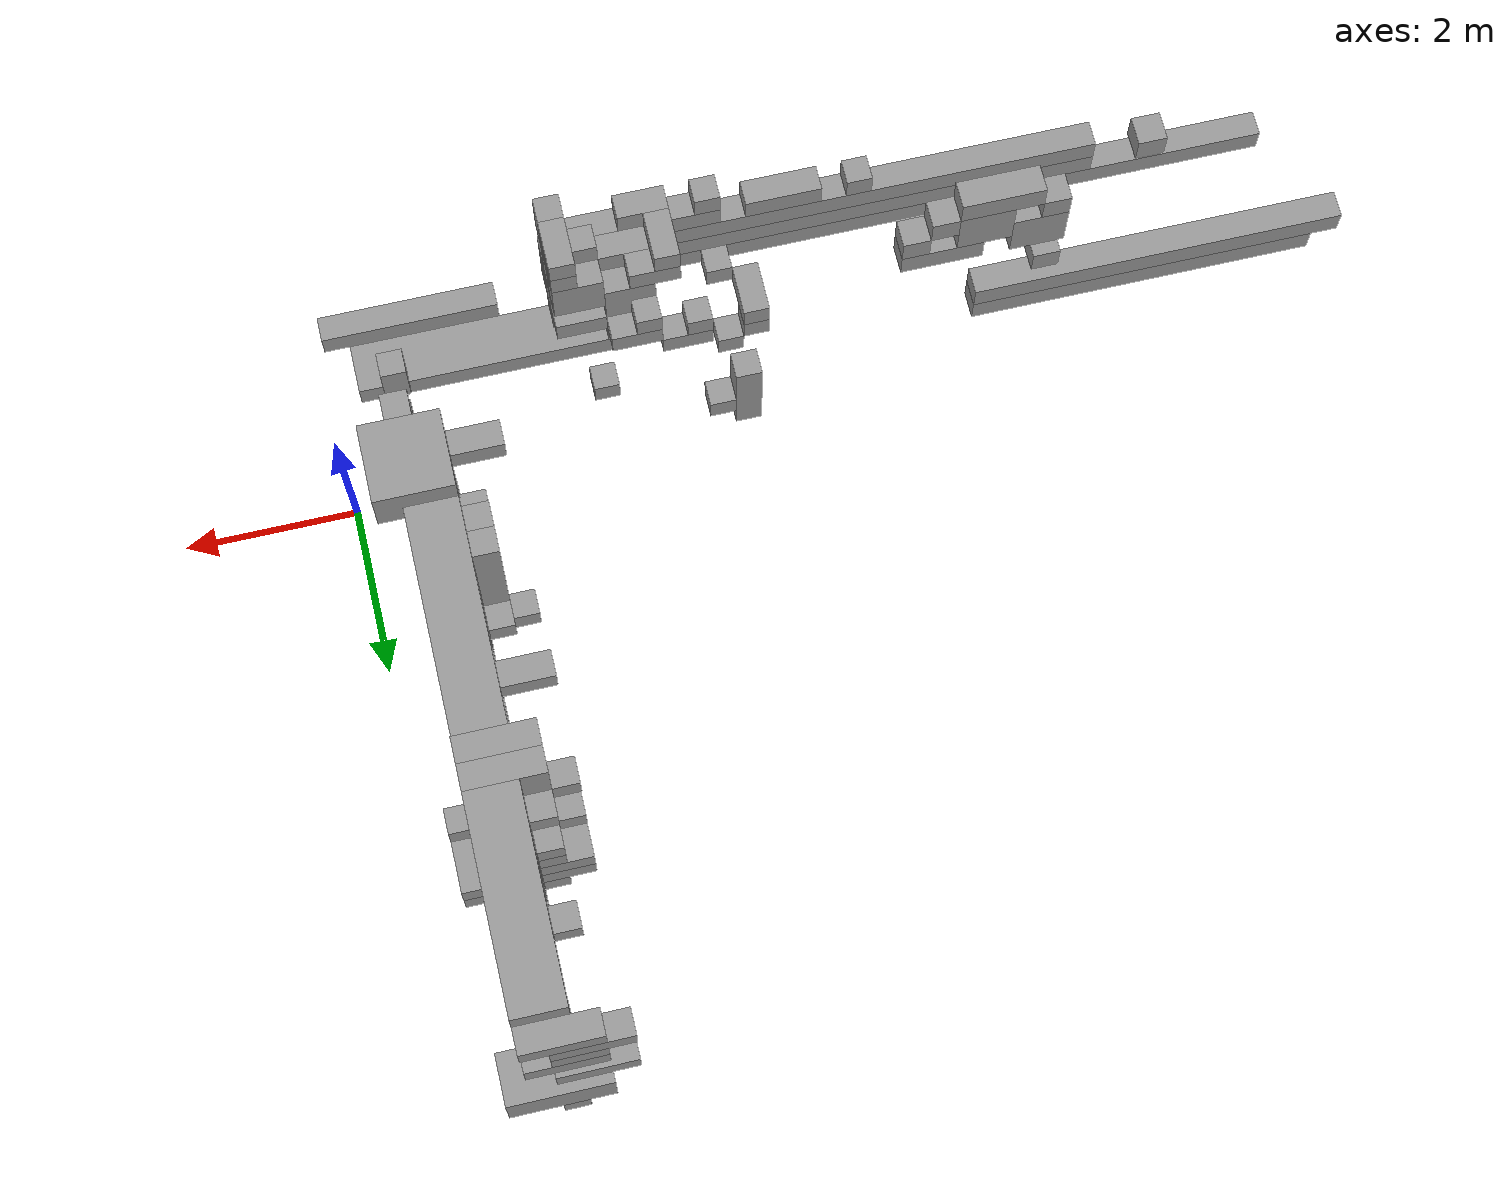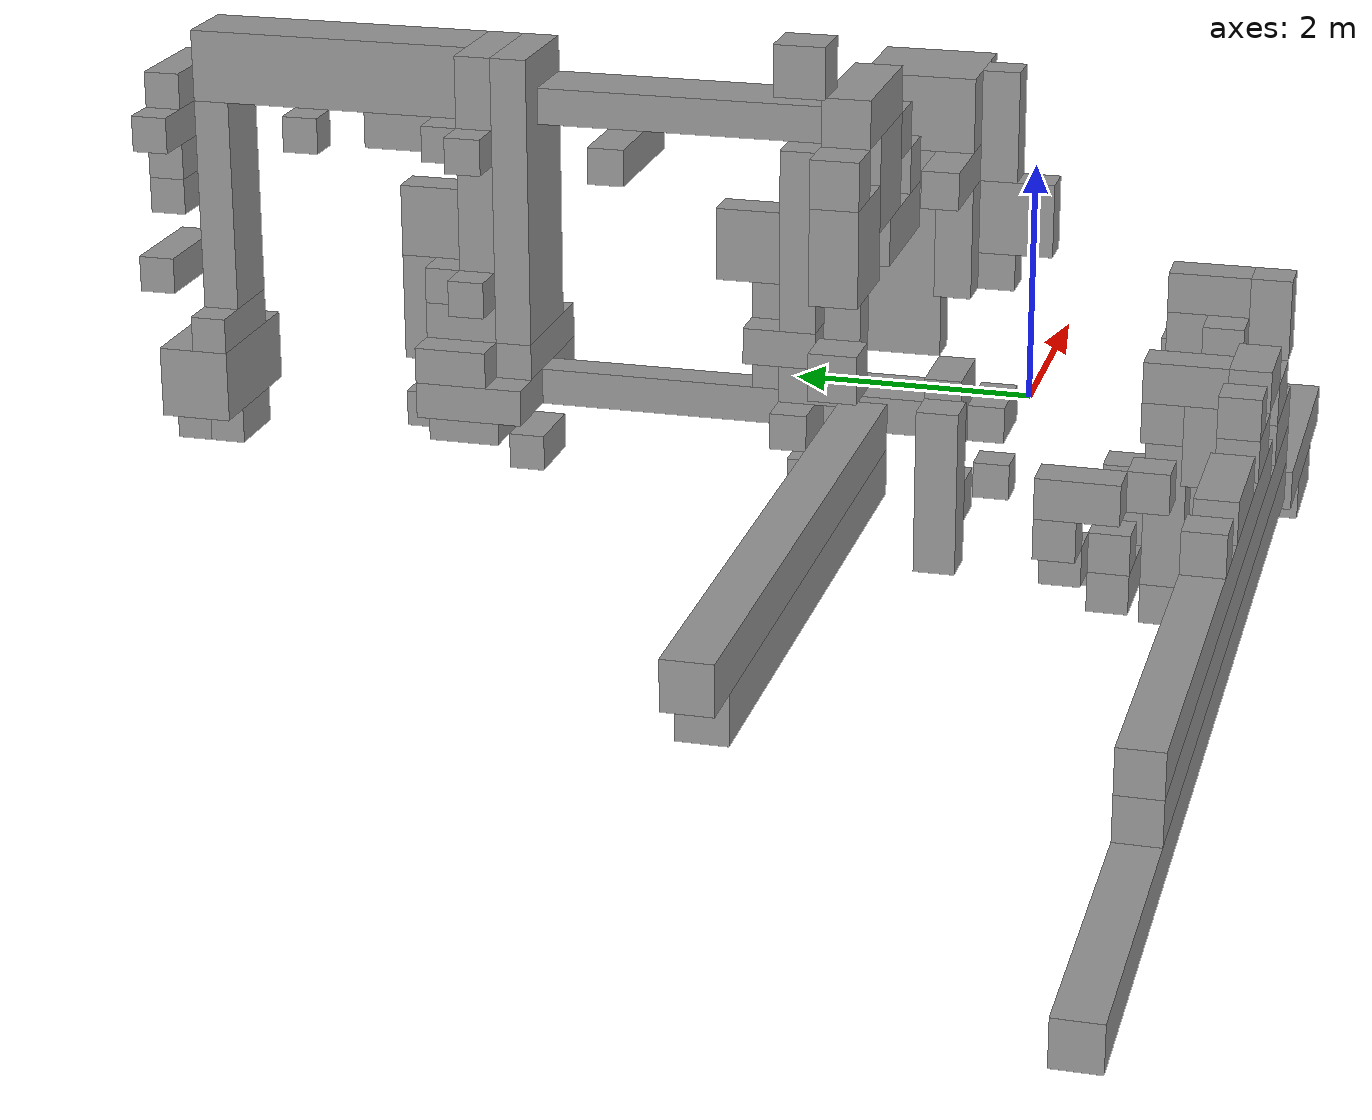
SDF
<sdf version="1.6">
 <world name="bt_world">
  <include><uri>model://sun</uri></include>
  <model name="obstacle_1648">
   <static>true</static>
   <pose>-7.05 -2.25 0.44999999999999996 0 0 0</pose>
   <link name="link">
    <collision name="collision"><geometry><box><size>8.7 0.3 0.3</size></box></geometry></collision>
    <visual name="visual">
     <geometry><box><size>8.7 0.3 0.3</size></box></geometry>
     <material><ambient>0.5 0.5 0.5 1</ambient><diffuse>0.6 0.6 0.6 1</diffuse></material>
    </visual>
   </link>
  </model>
  <model name="obstacle_1653">
   <static>true</static>
   <pose>-9.299999999999999 -0.15 2.25 0 0 0</pose>
   <link name="link">
    <collision name="collision"><geometry><box><size>4.2 0.3 0.3</size></box></geometry></collision>
    <visual name="visual">
     <geometry><box><size>4.2 0.3 0.3</size></box></geometry>
     <material><ambient>0.5 0.5 0.5 1</ambient><diffuse>0.6 0.6 0.6 1</diffuse></material>
    </visual>
   </link>
  </model>
  <model name="obstacle_1659">
   <static>true</static>
   <pose>-9.15 -0.15 1.95 0 0 0</pose>
   <link name="link">
    <collision name="collision"><geometry><box><size>3.9 0.3 0.3</size></box></geometry></collision>
    <visual name="visual">
     <geometry><box><size>3.9 0.3 0.3</size></box></geometry>
     <material><ambient>0.5 0.5 0.5 1</ambient><diffuse>0.6 0.6 0.6 1</diffuse></material>
    </visual>
   </link>
  </model>
  <model name="obstacle_1714">
   <static>true</static>
   <pose>-6.0 -2.25 0.75 0 0 0</pose>
   <link name="link">
    <collision name="collision"><geometry><box><size>6.6 0.3 0.3</size></box></geometry></collision>
    <visual name="visual">
     <geometry><box><size>6.6 0.3 0.3</size></box></geometry>
     <material><ambient>0.5 0.5 0.5 1</ambient><diffuse>0.6 0.6 0.6 1</diffuse></material>
    </visual>
   </link>
  </model>
  <model name="obstacle_1715">
   <static>true</static>
   <pose>-6.6 -2.25 1.05 0 0 0</pose>
   <link name="link">
    <collision name="collision">
     <geometry><box><size>5.3999999999999995 0.3 0.3</size></box></geometry>
    </collision>
    <visual name="visual">
     <geometry><box><size>5.3999999999999995 0.3 0.3</size></box></geometry>
     <material><ambient>0.5 0.5 0.5 1</ambient><diffuse>0.6 0.6 0.6 1</diffuse></material>
    </visual>
   </link>
  </model>
  <model name="obstacle_1720">
   <static>true</static>
   <pose>-8.85 -0.15 4.95 0 0 0</pose>
   <link name="link">
    <collision name="collision"><geometry><box><size>0.3 0.3 0.3</size></box></geometry></collision>
    <visual name="visual">
     <geometry><box><size>0.3 0.3 0.3</size></box></geometry>
     <material><ambient>0.5 0.5 0.5 1</ambient><diffuse>0.6 0.6 0.6 1</diffuse></material>
    </visual>
   </link>
  </model>
  <model name="obstacle_1740">
   <static>true</static>
   <pose>-7.949999999999999 -0.15 2.85 0 0 0</pose>
   <link name="link">
    <collision name="collision"><geometry><box><size>0.3 0.3 0.3</size></box></geometry></collision>
    <visual name="visual">
     <geometry><box><size>0.3 0.3 0.3</size></box></geometry>
     <material><ambient>0.5 0.5 0.5 1</ambient><diffuse>0.6 0.6 0.6 1</diffuse></material>
    </visual>
   </link>
  </model>
  <model name="obstacle_1741">
   <static>true</static>
   <pose>-7.8 -0.15 3.5999999999999996 0 0 0</pose>
   <link name="link">
    <collision name="collision"><geometry><box><size>0.6 0.3 0.6</size></box></geometry></collision>
    <visual name="visual">
     <geometry><box><size>0.6 0.3 0.6</size></box></geometry>
     <material><ambient>0.5 0.5 0.5 1</ambient><diffuse>0.6 0.6 0.6 1</diffuse></material>
    </visual>
   </link>
  </model>
  <model name="obstacle_1742">
   <static>true</static>
   <pose>-7.949999999999999 -0.15 4.05 0 0 0</pose>
   <link name="link">
    <collision name="collision"><geometry><box><size>0.3 0.3 0.3</size></box></geometry></collision>
    <visual name="visual">
     <geometry><box><size>0.3 0.3 0.3</size></box></geometry>
     <material><ambient>0.5 0.5 0.5 1</ambient><diffuse>0.6 0.6 0.6 1</diffuse></material>
    </visual>
   </link>
  </model>
  <model name="obstacle_1749">
   <static>true</static>
   <pose>-7.35 -0.15 4.35 0 0 0</pose>
   <link name="link">
    <collision name="collision">
     <geometry><box><size>0.8999999999999999 0.3 0.3</size></box></geometry>
    </collision>
    <visual name="visual">
     <geometry><box><size>0.8999999999999999 0.3 0.3</size></box></geometry>
     <material><ambient>0.5 0.5 0.5 1</ambient><diffuse>0.6 0.6 0.6 1</diffuse></material>
    </visual>
   </link>
  </model>
  <model name="obstacle_1758">
   <static>true</static>
   <pose>-7.199999999999999 -0.15 3.9 0 0 0</pose>
   <link name="link">
    <collision name="collision"><geometry><box><size>0.6 0.3 0.6</size></box></geometry></collision>
    <visual name="visual">
     <geometry><box><size>0.6 0.3 0.6</size></box></geometry>
     <material><ambient>0.5 0.5 0.5 1</ambient><diffuse>0.6 0.6 0.6 1</diffuse></material>
    </visual>
   </link>
  </model>
  <model name="obstacle_1764">
   <static>true</static>
   <pose>-6.75 -0.15 3.4499999999999997 0 0 0</pose>
   <link name="link">
    <collision name="collision">
     <geometry><box><size>0.8999999999999999 0.3 0.3</size></box></geometry>
    </collision>
    <visual name="visual">
     <geometry><box><size>0.8999999999999999 0.3 0.3</size></box></geometry>
     <material><ambient>0.5 0.5 0.5 1</ambient><diffuse>0.6 0.6 0.6 1</diffuse></material>
    </visual>
   </link>
  </model>
  <model name="obstacle_1768">
   <static>true</static>
   <pose>-6.75 -0.15 4.05 0 0 0</pose>
   <link name="link">
    <collision name="collision"><geometry><box><size>0.3 0.3 0.3</size></box></geometry></collision>
    <visual name="visual">
     <geometry><box><size>0.3 0.3 0.3</size></box></geometry>
     <material><ambient>0.5 0.5 0.5 1</ambient><diffuse>0.6 0.6 0.6 1</diffuse></material>
    </visual>
   </link>
  </model>
  <model name="obstacle_1771">
   <static>true</static>
   <pose>-6.45 -2.25 1.3499999999999999 0 0 0</pose>
   <link name="link">
    <collision name="collision"><geometry><box><size>0.3 0.3 0.3</size></box></geometry></collision>
    <visual name="visual">
     <geometry><box><size>0.3 0.3 0.3</size></box></geometry>
     <material><ambient>0.5 0.5 0.5 1</ambient><diffuse>0.6 0.6 0.6 1</diffuse></material>
    </visual>
   </link>
  </model>
  <model name="obstacle_1772">
   <static>true</static>
   <pose>-6.45 -0.15 3.75 0 0 0</pose>
   <link name="link">
    <collision name="collision"><geometry><box><size>0.3 0.3 0.3</size></box></geometry></collision>
    <visual name="visual">
     <geometry><box><size>0.3 0.3 0.3</size></box></geometry>
     <material><ambient>0.5 0.5 0.5 1</ambient><diffuse>0.6 0.6 0.6 1</diffuse></material>
    </visual>
   </link>
  </model>
  <model name="obstacle_1776">
   <static>true</static>
   <pose>-5.55 -2.25 1.3499999999999999 0 0 0</pose>
   <link name="link">
    <collision name="collision">
     <geometry><box><size>0.8999999999999999 0.3 0.3</size></box></geometry>
    </collision>
    <visual name="visual">
     <geometry><box><size>0.8999999999999999 0.3 0.3</size></box></geometry>
     <material><ambient>0.5 0.5 0.5 1</ambient><diffuse>0.6 0.6 0.6 1</diffuse></material>
    </visual>
   </link>
  </model>
  <model name="obstacle_1782">
   <static>true</static>
   <pose>-4.95 -1.2 1.05 0 0 0</pose>
   <link name="link">
    <collision name="collision"><geometry><box><size>0.3 0.6 0.3</size></box></geometry></collision>
    <visual name="visual">
     <geometry><box><size>0.3 0.6 0.3</size></box></geometry>
     <material><ambient>0.5 0.5 0.5 1</ambient><diffuse>0.6 0.6 0.6 1</diffuse></material>
    </visual>
   </link>
  </model>
  <model name="obstacle_1783">
   <static>true</static>
   <pose>-4.95 -1.05 0.75 0 0 0</pose>
   <link name="link">
    <collision name="collision"><geometry><box><size>0.3 0.3 0.3</size></box></geometry></collision>
    <visual name="visual">
     <geometry><box><size>0.3 0.3 0.3</size></box></geometry>
     <material><ambient>0.5 0.5 0.5 1</ambient><diffuse>0.6 0.6 0.6 1</diffuse></material>
    </visual>
   </link>
  </model>
  <model name="obstacle_1789">
   <static>true</static>
   <pose>-4.5 -2.25 1.3499999999999999 0 0 0</pose>
   <link name="link">
    <collision name="collision"><geometry><box><size>0.6 0.3 0.3</size></box></geometry></collision>
    <visual name="visual">
     <geometry><box><size>0.6 0.3 0.3</size></box></geometry>
     <material><ambient>0.5 0.5 0.5 1</ambient><diffuse>0.6 0.6 0.6 1</diffuse></material>
    </visual>
   </link>
  </model>
  <model name="obstacle_1790">
   <static>true</static>
   <pose>-4.6499999999999995 -2.25 1.65 0 0 0</pose>
   <link name="link">
    <collision name="collision"><geometry><box><size>0.3 0.3 0.3</size></box></geometry></collision>
    <visual name="visual">
     <geometry><box><size>0.3 0.3 0.3</size></box></geometry>
     <material><ambient>0.5 0.5 0.5 1</ambient><diffuse>0.6 0.6 0.6 1</diffuse></material>
    </visual>
   </link>
  </model>
  <model name="obstacle_1791">
   <static>true</static>
   <pose>-4.6499999999999995 -1.65 1.05 0 0 0</pose>
   <link name="link">
    <collision name="collision"><geometry><box><size>0.3 0.3 0.3</size></box></geometry></collision>
    <visual name="visual">
     <geometry><box><size>0.3 0.3 0.3</size></box></geometry>
     <material><ambient>0.5 0.5 0.5 1</ambient><diffuse>0.6 0.6 0.6 1</diffuse></material>
    </visual>
   </link>
  </model>
  <model name="obstacle_1792">
   <static>true</static>
   <pose>-4.6499999999999995 -1.05 0.44999999999999996 0 0 0</pose>
   <link name="link">
    <collision name="collision"><geometry><box><size>0.3 0.3 0.3</size></box></geometry></collision>
    <visual name="visual">
     <geometry><box><size>0.3 0.3 0.3</size></box></geometry>
     <material><ambient>0.5 0.5 0.5 1</ambient><diffuse>0.6 0.6 0.6 1</diffuse></material>
    </visual>
   </link>
  </model>
  <model name="obstacle_1793">
   <static>true</static>
   <pose>-4.6499999999999995 -0.15 0.8999999999999999 0 0 0</pose>
   <link name="link">
    <collision name="collision"><geometry><box><size>0.3 0.3 1.2</size></box></geometry></collision>
    <visual name="visual">
     <geometry><box><size>0.3 0.3 1.2</size></box></geometry>
     <material><ambient>0.5 0.5 0.5 1</ambient><diffuse>0.6 0.6 0.6 1</diffuse></material>
    </visual>
   </link>
  </model>
  <model name="obstacle_1802">
   <static>true</static>
   <pose>-4.2 -1.3499999999999999 0.15 0 0 0</pose>
   <link name="link">
    <collision name="collision"><geometry><box><size>0.6 0.3 0.3</size></box></geometry></collision>
    <visual name="visual">
     <geometry><box><size>0.6 0.3 0.3</size></box></geometry>
     <material><ambient>0.5 0.5 0.5 1</ambient><diffuse>0.6 0.6 0.6 1</diffuse></material>
    </visual>
   </link>
  </model>
  <model name="obstacle_1803">
   <static>true</static>
   <pose>-4.35 -1.3499999999999999 0.44999999999999996 0 0 0</pose>
   <link name="link">
    <collision name="collision"><geometry><box><size>0.3 0.3 0.3</size></box></geometry></collision>
    <visual name="visual">
     <geometry><box><size>0.3 0.3 0.3</size></box></geometry>
     <material><ambient>0.5 0.5 0.5 1</ambient><diffuse>0.6 0.6 0.6 1</diffuse></material>
    </visual>
   </link>
  </model>
  <model name="obstacle_1804">
   <static>true</static>
   <pose>-4.35 -0.15 0.75 0 0 0</pose>
   <link name="link">
    <collision name="collision"><geometry><box><size>0.3 0.3 0.3</size></box></geometry></collision>
    <visual name="visual">
     <geometry><box><size>0.3 0.3 0.3</size></box></geometry>
     <material><ambient>0.5 0.5 0.5 1</ambient><diffuse>0.6 0.6 0.6 1</diffuse></material>
    </visual>
   </link>
  </model>
  <model name="obstacle_1818">
   <static>true</static>
   <pose>-3.9 -2.25 1.65 0 0 0</pose>
   <link name="link">
    <collision name="collision"><geometry><box><size>0.6 0.3 0.3</size></box></geometry></collision>
    <visual name="visual">
     <geometry><box><size>0.6 0.3 0.3</size></box></geometry>
     <material><ambient>0.5 0.5 0.5 1</ambient><diffuse>0.6 0.6 0.6 1</diffuse></material>
    </visual>
   </link>
  </model>
  <model name="obstacle_1819">
   <static>true</static>
   <pose>-3.4499999999999997 -1.95 1.2 0 0 0</pose>
   <link name="link">
    <collision name="collision"><geometry><box><size>1.5 0.3 0.6</size></box></geometry></collision>
    <visual name="visual">
     <geometry><box><size>1.5 0.3 0.6</size></box></geometry>
     <material><ambient>0.5 0.5 0.5 1</ambient><diffuse>0.6 0.6 0.6 1</diffuse></material>
    </visual>
   </link>
  </model>
  <model name="obstacle_1820">
   <static>true</static>
   <pose>-4.05 -1.7999999999999998 1.65 0 0 0</pose>
   <link name="link">
    <collision name="collision"><geometry><box><size>0.3 0.6 0.3</size></box></geometry></collision>
    <visual name="visual">
     <geometry><box><size>0.3 0.6 0.3</size></box></geometry>
     <material><ambient>0.5 0.5 0.5 1</ambient><diffuse>0.6 0.6 0.6 1</diffuse></material>
    </visual>
   </link>
  </model>
  <model name="obstacle_1821">
   <static>true</static>
   <pose>-3.9 -1.65 1.3499999999999999 0 0 0</pose>
   <link name="link">
    <collision name="collision"><geometry><box><size>0.6 0.3 0.3</size></box></geometry></collision>
    <visual name="visual">
     <geometry><box><size>0.6 0.3 0.3</size></box></geometry>
     <material><ambient>0.5 0.5 0.5 1</ambient><diffuse>0.6 0.6 0.6 1</diffuse></material>
    </visual>
   </link>
  </model>
  <model name="obstacle_1828">
   <static>true</static>
   <pose>-2.1 -1.7999999999999998 -0.15 0 0 0</pose>
   <link name="link">
    <collision name="collision">
     <geometry><box><size>3.5999999999999996 0.6 0.3</size></box></geometry>
    </collision>
    <visual name="visual">
     <geometry><box><size>3.5999999999999996 0.6 0.3</size></box></geometry>
     <material><ambient>0.5 0.5 0.5 1</ambient><diffuse>0.6 0.6 0.6 1</diffuse></material>
    </visual>
   </link>
  </model>
  <model name="obstacle_1829">
   <static>true</static>
   <pose>-3.3 -1.95 0.15 0 0 0</pose>
   <link name="link">
    <collision name="collision"><geometry><box><size>1.2 0.3 0.3</size></box></geometry></collision>
    <visual name="visual">
     <geometry><box><size>1.2 0.3 0.3</size></box></geometry>
     <material><ambient>0.5 0.5 0.5 1</ambient><diffuse>0.6 0.6 0.6 1</diffuse></material>
    </visual>
   </link>
  </model>
  <model name="obstacle_1830">
   <static>true</static>
   <pose>-3.5999999999999996 -1.65 0.6 0 0 0</pose>
   <link name="link">
    <collision name="collision"><geometry><box><size>0.6 0.3 1.2</size></box></geometry></collision>
    <visual name="visual">
     <geometry><box><size>0.6 0.3 1.2</size></box></geometry>
     <material><ambient>0.5 0.5 0.5 1</ambient><diffuse>0.6 0.6 0.6 1</diffuse></material>
    </visual>
   </link>
  </model>
  <model name="obstacle_1831">
   <static>true</static>
   <pose>-3.5999999999999996 -1.3499999999999999 0.44999999999999996 0 0 0</pose>
   <link name="link">
    <collision name="collision"><geometry><box><size>0.6 0.3 0.3</size></box></geometry></collision>
    <visual name="visual">
     <geometry><box><size>0.6 0.3 0.3</size></box></geometry>
     <material><ambient>0.5 0.5 0.5 1</ambient><diffuse>0.6 0.6 0.6 1</diffuse></material>
    </visual>
   </link>
  </model>
  <model name="obstacle_1832">
   <static>true</static>
   <pose>-3.75 -1.3499999999999999 0.75 0 0 0</pose>
   <link name="link">
    <collision name="collision"><geometry><box><size>0.3 0.3 0.3</size></box></geometry></collision>
    <visual name="visual">
     <geometry><box><size>0.3 0.3 0.3</size></box></geometry>
     <material><ambient>0.5 0.5 0.5 1</ambient><diffuse>0.6 0.6 0.6 1</diffuse></material>
    </visual>
   </link>
  </model>
  <model name="obstacle_1842">
   <static>true</static>
   <pose>-3.15 -2.25 1.05 0 0 0</pose>
   <link name="link">
    <collision name="collision">
     <geometry><box><size>0.8999999999999999 0.3 0.3</size></box></geometry>
    </collision>
    <visual name="visual">
     <geometry><box><size>0.8999999999999999 0.3 0.3</size></box></geometry>
     <material><ambient>0.5 0.5 0.5 1</ambient><diffuse>0.6 0.6 0.6 1</diffuse></material>
    </visual>
   </link>
  </model>
  <model name="obstacle_1843">
   <static>true</static>
   <pose>-3.3 -2.25 1.3499999999999999 0 0 0</pose>
   <link name="link">
    <collision name="collision"><geometry><box><size>0.6 0.3 0.3</size></box></geometry></collision>
    <visual name="visual">
     <geometry><box><size>0.6 0.3 0.3</size></box></geometry>
     <material><ambient>0.5 0.5 0.5 1</ambient><diffuse>0.6 0.6 0.6 1</diffuse></material>
    </visual>
   </link>
  </model>
  <model name="obstacle_1844">
   <static>true</static>
   <pose>-3.15 -1.95 0.6 0 0 0</pose>
   <link name="link">
    <collision name="collision">
     <geometry><box><size>0.8999999999999999 0.3 0.6</size></box></geometry>
    </collision>
    <visual name="visual">
     <geometry><box><size>0.8999999999999999 0.3 0.6</size></box></geometry>
     <material><ambient>0.5 0.5 0.5 1</ambient><diffuse>0.6 0.6 0.6 1</diffuse></material>
    </visual>
   </link>
  </model>
  <model name="obstacle_1849">
   <static>true</static>
   <pose>-3.0 -1.95 1.65 0 0 0</pose>
   <link name="link">
    <collision name="collision"><geometry><box><size>0.6 0.3 0.3</size></box></geometry></collision>
    <visual name="visual">
     <geometry><box><size>0.6 0.3 0.3</size></box></geometry>
     <material><ambient>0.5 0.5 0.5 1</ambient><diffuse>0.6 0.6 0.6 1</diffuse></material>
    </visual>
   </link>
  </model>
  <model name="obstacle_1850">
   <static>true</static>
   <pose>-3.0 -1.65 0.44999999999999996 0 0 0</pose>
   <link name="link">
    <collision name="collision"><geometry><box><size>0.6 0.3 0.3</size></box></geometry></collision>
    <visual name="visual">
     <geometry><box><size>0.6 0.3 0.3</size></box></geometry>
     <material><ambient>0.5 0.5 0.5 1</ambient><diffuse>0.6 0.6 0.6 1</diffuse></material>
    </visual>
   </link>
  </model>
  <model name="obstacle_1851">
   <static>true</static>
   <pose>-3.0 -1.65 1.2 0 0 0</pose>
   <link name="link">
    <collision name="collision"><geometry><box><size>0.6 0.3 0.6</size></box></geometry></collision>
    <visual name="visual">
     <geometry><box><size>0.6 0.3 0.6</size></box></geometry>
     <material><ambient>0.5 0.5 0.5 1</ambient><diffuse>0.6 0.6 0.6 1</diffuse></material>
    </visual>
   </link>
  </model>
  <model name="obstacle_1852">
   <static>true</static>
   <pose>-3.15 -1.05 -0.15 0 0 0</pose>
   <link name="link">
    <collision name="collision"><geometry><box><size>0.3 0.3 0.3</size></box></geometry></collision>
    <visual name="visual">
     <geometry><box><size>0.3 0.3 0.3</size></box></geometry>
     <material><ambient>0.5 0.5 0.5 1</ambient><diffuse>0.6 0.6 0.6 1</diffuse></material>
    </visual>
   </link>
  </model>
  <model name="obstacle_1858">
   <static>true</static>
   <pose>-2.85 -2.25 1.7999999999999998 0 0 0</pose>
   <link name="link">
    <collision name="collision"><geometry><box><size>0.3 0.3 0.6</size></box></geometry></collision>
    <visual name="visual">
     <geometry><box><size>0.3 0.3 0.6</size></box></geometry>
     <material><ambient>0.5 0.5 0.5 1</ambient><diffuse>0.6 0.6 0.6 1</diffuse></material>
    </visual>
   </link>
  </model>
  <model name="obstacle_1859">
   <static>true</static>
   <pose>-2.85 -1.7999999999999998 1.95 0 0 0</pose>
   <link name="link">
    <collision name="collision"><geometry><box><size>0.3 0.6 0.3</size></box></geometry></collision>
    <visual name="visual">
     <geometry><box><size>0.3 0.6 0.3</size></box></geometry>
     <material><ambient>0.5 0.5 0.5 1</ambient><diffuse>0.6 0.6 0.6 1</diffuse></material>
    </visual>
   </link>
  </model>
  <model name="obstacle_1860">
   <static>true</static>
   <pose>-2.85 -1.65 1.65 0 0 0</pose>
   <link name="link">
    <collision name="collision"><geometry><box><size>0.3 0.3 0.3</size></box></geometry></collision>
    <visual name="visual">
     <geometry><box><size>0.3 0.3 0.3</size></box></geometry>
     <material><ambient>0.5 0.5 0.5 1</ambient><diffuse>0.6 0.6 0.6 1</diffuse></material>
    </visual>
   </link>
  </model>
  <model name="obstacle_1892">
   <static>true</static>
   <pose>-1.05 -2.25 0.15 0 0 0</pose>
   <link name="link">
    <collision name="collision"><geometry><box><size>2.1 0.3 0.3</size></box></geometry></collision>
    <visual name="visual">
     <geometry><box><size>2.1 0.3 0.3</size></box></geometry>
     <material><ambient>0.5 0.5 0.5 1</ambient><diffuse>0.6 0.6 0.6 1</diffuse></material>
    </visual>
   </link>
  </model>
  <model name="obstacle_1896">
   <static>true</static>
   <pose>-1.2 0.44999999999999996 2.25 0 0 0</pose>
   <link name="link">
    <collision name="collision"><geometry><box><size>1.2 0.3 0.3</size></box></geometry></collision>
    <visual name="visual">
     <geometry><box><size>1.2 0.3 0.3</size></box></geometry>
     <material><ambient>0.5 0.5 0.5 1</ambient><diffuse>0.6 0.6 0.6 1</diffuse></material>
    </visual>
   </link>
  </model>
  <model name="obstacle_1897">
   <static>true</static>
   <pose>-1.3499999999999999 1.65 0.15 0 0 0</pose>
   <link name="link">
    <collision name="collision">
     <geometry><box><size>0.8999999999999999 0.3 0.3</size></box></geometry>
    </collision>
    <visual name="visual">
     <geometry><box><size>0.8999999999999999 0.3 0.3</size></box></geometry>
     <material><ambient>0.5 0.5 0.5 1</ambient><diffuse>0.6 0.6 0.6 1</diffuse></material>
    </visual>
   </link>
  </model>
  <model name="obstacle_1898">
   <static>true</static>
   <pose>-1.2 3.15 2.25 0 0 0</pose>
   <link name="link">
    <collision name="collision"><geometry><box><size>1.2 0.3 0.3</size></box></geometry></collision>
    <visual name="visual">
     <geometry><box><size>1.2 0.3 0.3</size></box></geometry>
     <material><ambient>0.5 0.5 0.5 1</ambient><diffuse>0.6 0.6 0.6 1</diffuse></material>
    </visual>
   </link>
  </model>
  <model name="obstacle_1899">
   <static>true</static>
   <pose>-1.05 4.35 0.15 0 0 0</pose>
   <link name="link">
    <collision name="collision">
     <geometry><box><size>1.5 0.8999999999999999 0.3</size></box></geometry>
    </collision>
    <visual name="visual">
     <geometry><box><size>1.5 0.8999999999999999 0.3</size></box></geometry>
     <material><ambient>0.5 0.5 0.5 1</ambient><diffuse>0.6 0.6 0.6 1</diffuse></material>
    </visual>
   </link>
  </model>
  <model name="obstacle_1900">
   <static>true</static>
   <pose>-1.3499999999999999 4.5 0.44999999999999996 0 0 0</pose>
   <link name="link">
    <collision name="collision">
     <geometry><box><size>0.8999999999999999 0.6 0.3</size></box></geometry>
    </collision>
    <visual name="visual">
     <geometry><box><size>0.8999999999999999 0.6 0.3</size></box></geometry>
     <material><ambient>0.5 0.5 0.5 1</ambient><diffuse>0.6 0.6 0.6 1</diffuse></material>
    </visual>
   </link>
  </model>
  <model name="obstacle_1901">
   <static>true</static>
   <pose>-1.3499999999999999 4.35 1.05 0 0 0</pose>
   <link name="link">
    <collision name="collision">
     <geometry><box><size>0.8999999999999999 0.3 0.3</size></box></geometry>
    </collision>
    <visual name="visual">
     <geometry><box><size>0.8999999999999999 0.3 0.3</size></box></geometry>
     <material><ambient>0.5 0.5 0.5 1</ambient><diffuse>0.6 0.6 0.6 1</diffuse></material>
    </visual>
   </link>
  </model>
  <model name="obstacle_1902">
   <static>true</static>
   <pose>-1.3499999999999999 4.35 2.25 0 0 0</pose>
   <link name="link">
    <collision name="collision">
     <geometry><box><size>0.8999999999999999 0.3 0.3</size></box></geometry>
    </collision>
    <visual name="visual">
     <geometry><box><size>0.8999999999999999 0.3 0.3</size></box></geometry>
     <material><ambient>0.5 0.5 0.5 1</ambient><diffuse>0.6 0.6 0.6 1</diffuse></material>
    </visual>
   </link>
  </model>
  <model name="obstacle_1904">
   <static>true</static>
   <pose>-1.3499999999999999 7.05 1.05 0 0 0</pose>
   <link name="link">
    <collision name="collision">
     <geometry><box><size>0.8999999999999999 0.3 0.3</size></box></geometry>
    </collision>
    <visual name="visual">
     <geometry><box><size>0.8999999999999999 0.3 0.3</size></box></geometry>
     <material><ambient>0.5 0.5 0.5 1</ambient><diffuse>0.6 0.6 0.6 1</diffuse></material>
    </visual>
   </link>
  </model>
  <model name="obstacle_1905">
   <static>true</static>
   <pose>-1.3499999999999999 7.05 2.25 0 0 0</pose>
   <link name="link">
    <collision name="collision">
     <geometry><box><size>0.8999999999999999 0.3 0.3</size></box></geometry>
    </collision>
    <visual name="visual">
     <geometry><box><size>0.8999999999999999 0.3 0.3</size></box></geometry>
     <material><ambient>0.5 0.5 0.5 1</ambient><diffuse>0.6 0.6 0.6 1</diffuse></material>
    </visual>
   </link>
  </model>
  <model name="obstacle_1919">
   <static>true</static>
   <pose>-1.05 -2.25 -0.15 0 0 0</pose>
   <link name="link">
    <collision name="collision">
     <geometry><box><size>0.8999999999999999 0.3 0.3</size></box></geometry>
    </collision>
    <visual name="visual">
     <geometry><box><size>0.8999999999999999 0.3 0.3</size></box></geometry>
     <material><ambient>0.5 0.5 0.5 1</ambient><diffuse>0.6 0.6 0.6 1</diffuse></material>
    </visual>
   </link>
  </model>
  <model name="obstacle_1920">
   <static>true</static>
   <pose>-1.2 0.44999999999999996 0.3 0 0 0</pose>
   <link name="link">
    <collision name="collision"><geometry><box><size>0.6 0.3 0.6</size></box></geometry></collision>
    <visual name="visual">
     <geometry><box><size>0.6 0.3 0.6</size></box></geometry>
     <material><ambient>0.5 0.5 0.5 1</ambient><diffuse>0.6 0.6 0.6 1</diffuse></material>
    </visual>
   </link>
  </model>
  <model name="obstacle_1922">
   <static>true</static>
   <pose>-1.3499999999999999 1.5 0.44999999999999996 0 0 0</pose>
   <link name="link">
    <collision name="collision"><geometry><box><size>0.3 0.6 0.3</size></box></geometry></collision>
    <visual name="visual">
     <geometry><box><size>0.3 0.6 0.3</size></box></geometry>
     <material><ambient>0.5 0.5 0.5 1</ambient><diffuse>0.6 0.6 0.6 1</diffuse></material>
    </visual>
   </link>
  </model>
  <model name="obstacle_1923">
   <static>true</static>
   <pose>-1.05 1.3499999999999999 2.25 0 0 0</pose>
   <link name="link">
    <collision name="collision">
     <geometry><box><size>0.8999999999999999 0.3 0.3</size></box></geometry>
    </collision>
    <visual name="visual">
     <geometry><box><size>0.8999999999999999 0.3 0.3</size></box></geometry>
     <material><ambient>0.5 0.5 0.5 1</ambient><diffuse>0.6 0.6 0.6 1</diffuse></material>
    </visual>
   </link>
  </model>
  <model name="obstacle_1925">
   <static>true</static>
   <pose>-1.3499999999999999 1.7999999999999998 0.75 0 0 0</pose>
   <link name="link">
    <collision name="collision"><geometry><box><size>0.3 0.6 0.3</size></box></geometry></collision>
    <visual name="visual">
     <geometry><box><size>0.3 0.6 0.3</size></box></geometry>
     <material><ambient>0.5 0.5 0.5 1</ambient><diffuse>0.6 0.6 0.6 1</diffuse></material>
    </visual>
   </link>
  </model>
  <model name="obstacle_1926">
   <static>true</static>
   <pose>-1.3499999999999999 1.65 1.65 0 0 0</pose>
   <link name="link">
    <collision name="collision"><geometry><box><size>0.3 0.3 1.5</size></box></geometry></collision>
    <visual name="visual">
     <geometry><box><size>0.3 0.3 1.5</size></box></geometry>
     <material><ambient>0.5 0.5 0.5 1</ambient><diffuse>0.6 0.6 0.6 1</diffuse></material>
    </visual>
   </link>
  </model>
  <model name="obstacle_1928">
   <static>true</static>
   <pose>-0.8999999999999999 4.05 0.44999999999999996 0 0 0</pose>
   <link name="link">
    <collision name="collision"><geometry><box><size>1.2 0.3 0.3</size></box></geometry></collision>
    <visual name="visual">
     <geometry><box><size>1.2 0.3 0.3</size></box></geometry>
     <material><ambient>0.5 0.5 0.5 1</ambient><diffuse>0.6 0.6 0.6 1</diffuse></material>
    </visual>
   </link>
  </model>
  <model name="obstacle_1929">
   <static>true</static>
   <pose>-1.05 4.05 1.7999999999999998 0 0 0</pose>
   <link name="link">
    <collision name="collision">
     <geometry><box><size>0.8999999999999999 0.3 2.4</size></box></geometry>
    </collision>
    <visual name="visual">
     <geometry><box><size>0.8999999999999999 0.3 2.4</size></box></geometry>
     <material><ambient>0.5 0.5 0.5 1</ambient><diffuse>0.6 0.6 0.6 1</diffuse></material>
    </visual>
   </link>
  </model>
  <model name="obstacle_1930">
   <static>true</static>
   <pose>-0.8999999999999999 4.5 -0.15 0 0 0</pose>
   <link name="link">
    <collision name="collision"><geometry><box><size>1.2 0.6 0.3</size></box></geometry></collision>
    <visual name="visual">
     <geometry><box><size>1.2 0.6 0.3</size></box></geometry>
     <material><ambient>0.5 0.5 0.5 1</ambient><diffuse>0.6 0.6 0.6 1</diffuse></material>
    </visual>
   </link>
  </model>
  <model name="obstacle_1931">
   <static>true</static>
   <pose>-1.2 4.5 0.75 0 0 0</pose>
   <link name="link">
    <collision name="collision"><geometry><box><size>0.6 0.6 0.3</size></box></geometry></collision>
    <visual name="visual">
     <geometry><box><size>0.6 0.6 0.3</size></box></geometry>
     <material><ambient>0.5 0.5 0.5 1</ambient><diffuse>0.6 0.6 0.6 1</diffuse></material>
    </visual>
   </link>
  </model>
  <model name="obstacle_1932">
   <static>true</static>
   <pose>-1.2 4.35 1.65 0 0 0</pose>
   <link name="link">
    <collision name="collision">
     <geometry><box><size>0.6 0.3 0.8999999999999999</size></box></geometry>
    </collision>
    <visual name="visual">
     <geometry><box><size>0.6 0.3 0.8999999999999999</size></box></geometry>
     <material><ambient>0.5 0.5 0.5 1</ambient><diffuse>0.6 0.6 0.6 1</diffuse></material>
    </visual>
   </link>
  </model>
  <model name="obstacle_1933">
   <static>true</static>
   <pose>-1.05 4.35 2.6999999999999997 0 0 0</pose>
   <link name="link">
    <collision name="collision">
     <geometry><box><size>0.8999999999999999 0.3 0.6</size></box></geometry>
    </collision>
    <visual name="visual">
     <geometry><box><size>0.8999999999999999 0.3 0.6</size></box></geometry>
     <material><ambient>0.5 0.5 0.5 1</ambient><diffuse>0.6 0.6 0.6 1</diffuse></material>
    </visual>
   </link>
  </model>
  <model name="obstacle_1934">
   <static>true</static>
   <pose>-1.2 4.6499999999999995 1.05 0 0 0</pose>
   <link name="link">
    <collision name="collision"><geometry><box><size>0.6 0.3 0.3</size></box></geometry></collision>
    <visual name="visual">
     <geometry><box><size>0.6 0.3 0.3</size></box></geometry>
     <material><ambient>0.5 0.5 0.5 1</ambient><diffuse>0.6 0.6 0.6 1</diffuse></material>
    </visual>
   </link>
  </model>
  <model name="obstacle_1935">
   <static>true</static>
   <pose>-1.2 4.6499999999999995 2.25 0 0 0</pose>
   <link name="link">
    <collision name="collision"><geometry><box><size>0.6 0.3 0.3</size></box></geometry></collision>
    <visual name="visual">
     <geometry><box><size>0.6 0.3 0.3</size></box></geometry>
     <material><ambient>0.5 0.5 0.5 1</ambient><diffuse>0.6 0.6 0.6 1</diffuse></material>
    </visual>
   </link>
  </model>
  <model name="obstacle_1937">
   <static>true</static>
   <pose>-1.3499999999999999 5.85 2.25 0 0 0</pose>
   <link name="link">
    <collision name="collision"><geometry><box><size>0.3 0.3 0.3</size></box></geometry></collision>
    <visual name="visual">
     <geometry><box><size>0.3 0.3 0.3</size></box></geometry>
     <material><ambient>0.5 0.5 0.5 1</ambient><diffuse>0.6 0.6 0.6 1</diffuse></material>
    </visual>
   </link>
  </model>
  <model name="obstacle_1938">
   <static>true</static>
   <pose>-0.8999999999999999 6.8999999999999995 0.0 0 0 0</pose>
   <link name="link">
    <collision name="collision"><geometry><box><size>1.2 0.6 0.6</size></box></geometry></collision>
    <visual name="visual">
     <geometry><box><size>1.2 0.6 0.6</size></box></geometry>
     <material><ambient>0.5 0.5 0.5 1</ambient><diffuse>0.6 0.6 0.6 1</diffuse></material>
    </visual>
   </link>
  </model>
  <model name="obstacle_1939">
   <static>true</static>
   <pose>-1.05 6.75 0.44999999999999996 0 0 0</pose>
   <link name="link">
    <collision name="collision">
     <geometry><box><size>0.8999999999999999 0.3 0.3</size></box></geometry>
    </collision>
    <visual name="visual">
     <geometry><box><size>0.8999999999999999 0.3 0.3</size></box></geometry>
     <material><ambient>0.5 0.5 0.5 1</ambient><diffuse>0.6 0.6 0.6 1</diffuse></material>
    </visual>
   </link>
  </model>
  <model name="obstacle_1941">
   <static>true</static>
   <pose>-1.05 7.05 1.65 0 0 0</pose>
   <link name="link">
    <collision name="collision">
     <geometry><box><size>0.8999999999999999 0.3 0.3</size></box></geometry>
    </collision>
    <visual name="visual">
     <geometry><box><size>0.8999999999999999 0.3 0.3</size></box></geometry>
     <material><ambient>0.5 0.5 0.5 1</ambient><diffuse>0.6 0.6 0.6 1</diffuse></material>
    </visual>
   </link>
  </model>
  <model name="obstacle_1942">
   <static>true</static>
   <pose>-1.2 7.05 1.95 0 0 0</pose>
   <link name="link">
    <collision name="collision"><geometry><box><size>0.6 0.3 0.3</size></box></geometry></collision>
    <visual name="visual">
     <geometry><box><size>0.6 0.3 0.3</size></box></geometry>
     <material><ambient>0.5 0.5 0.5 1</ambient><diffuse>0.6 0.6 0.6 1</diffuse></material>
    </visual>
   </link>
  </model>
  <model name="obstacle_1943">
   <static>true</static>
   <pose>-1.05 7.05 2.55 0 0 0</pose>
   <link name="link">
    <collision name="collision">
     <geometry><box><size>0.8999999999999999 0.3 0.3</size></box></geometry>
    </collision>
    <visual name="visual">
     <geometry><box><size>0.8999999999999999 0.3 0.3</size></box></geometry>
     <material><ambient>0.5 0.5 0.5 1</ambient><diffuse>0.6 0.6 0.6 1</diffuse></material>
    </visual>
   </link>
  </model>
  <model name="obstacle_1970">
   <static>true</static>
   <pose>-0.8999999999999999 0.15 0.15 0 0 0</pose>
   <link name="link">
    <collision name="collision"><geometry><box><size>0.6 0.3 0.3</size></box></geometry></collision>
    <visual name="visual">
     <geometry><box><size>0.6 0.3 0.3</size></box></geometry>
     <material><ambient>0.5 0.5 0.5 1</ambient><diffuse>0.6 0.6 0.6 1</diffuse></material>
    </visual>
   </link>
  </model>
  <model name="obstacle_1974">
   <static>true</static>
   <pose>-0.8999999999999999 0.44999999999999996 1.65 0 0 0</pose>
   <link name="link">
    <collision name="collision">
     <geometry><box><size>0.6 0.3 0.8999999999999999</size></box></geometry>
    </collision>
    <visual name="visual">
     <geometry><box><size>0.6 0.3 0.8999999999999999</size></box></geometry>
     <material><ambient>0.5 0.5 0.5 1</ambient><diffuse>0.6 0.6 0.6 1</diffuse></material>
    </visual>
   </link>
  </model>
  <model name="obstacle_1975">
   <static>true</static>
   <pose>-0.75 0.75 2.6999999999999997 0 0 0</pose>
   <link name="link">
    <collision name="collision">
     <geometry><box><size>0.8999999999999999 0.8999999999999999 0.6</size></box></geometry>
    </collision>
    <visual name="visual">
     <geometry><box><size>0.8999999999999999 0.8999999999999999 0.6</size></box></geometry>
     <material><ambient>0.5 0.5 0.5 1</ambient><diffuse>0.6 0.6 0.6 1</diffuse></material>
    </visual>
   </link>
  </model>
  <model name="obstacle_1976">
   <static>true</static>
   <pose>-0.8999999999999999 1.05 0.15 0 0 0</pose>
   <link name="link">
    <collision name="collision">
     <geometry><box><size>0.6 0.8999999999999999 0.3</size></box></geometry>
    </collision>
    <visual name="visual">
     <geometry><box><size>0.6 0.8999999999999999 0.3</size></box></geometry>
     <material><ambient>0.5 0.5 0.5 1</ambient><diffuse>0.6 0.6 0.6 1</diffuse></material>
    </visual>
   </link>
  </model>
  <model name="obstacle_1979">
   <static>true</static>
   <pose>-0.8999999999999999 1.5 -0.44999999999999996 0 0 0</pose>
   <link name="link">
    <collision name="collision"><geometry><box><size>0.6 0.6 0.3</size></box></geometry></collision>
    <visual name="visual">
     <geometry><box><size>0.6 0.6 0.3</size></box></geometry>
     <material><ambient>0.5 0.5 0.5 1</ambient><diffuse>0.6 0.6 0.6 1</diffuse></material>
    </visual>
   </link>
  </model>
  <model name="obstacle_1980">
   <static>true</static>
   <pose>-0.8999999999999999 1.3499999999999999 1.3499999999999999 0 0 0</pose>
   <link name="link">
    <collision name="collision"><geometry><box><size>0.6 0.3 1.5</size></box></geometry></collision>
    <visual name="visual">
     <geometry><box><size>0.6 0.3 1.5</size></box></geometry>
     <material><ambient>0.5 0.5 0.5 1</ambient><diffuse>0.6 0.6 0.6 1</diffuse></material>
    </visual>
   </link>
  </model>
  <model name="obstacle_1981">
   <static>true</static>
   <pose>-0.8999999999999999 2.55 2.55 0 0 0</pose>
   <link name="link">
    <collision name="collision">
     <geometry><box><size>0.6 2.6999999999999997 0.3</size></box></geometry>
    </collision>
    <visual name="visual">
     <geometry><box><size>0.6 2.6999999999999997 0.3</size></box></geometry>
     <material><ambient>0.5 0.5 0.5 1</ambient><diffuse>0.6 0.6 0.6 1</diffuse></material>
    </visual>
   </link>
  </model>
  <model name="obstacle_1982">
   <static>true</static>
   <pose>-0.8999999999999999 1.65 0.44999999999999996 0 0 0</pose>
   <link name="link">
    <collision name="collision"><geometry><box><size>0.6 0.3 0.3</size></box></geometry></collision>
    <visual name="visual">
     <geometry><box><size>0.6 0.3 0.3</size></box></geometry>
     <material><ambient>0.5 0.5 0.5 1</ambient><diffuse>0.6 0.6 0.6 1</diffuse></material>
    </visual>
   </link>
  </model>
  <model name="obstacle_1983">
   <static>true</static>
   <pose>-1.05 1.95 1.5 0 0 0</pose>
   <link name="link">
    <collision name="collision">
     <geometry><box><size>0.3 0.8999999999999999 0.6</size></box></geometry>
    </collision>
    <visual name="visual">
     <geometry><box><size>0.3 0.8999999999999999 0.6</size></box></geometry>
     <material><ambient>0.5 0.5 0.5 1</ambient><diffuse>0.6 0.6 0.6 1</diffuse></material>
    </visual>
   </link>
  </model>
  <model name="obstacle_1984">
   <static>true</static>
   <pose>-1.05 1.65 2.1 0 0 0</pose>
   <link name="link">
    <collision name="collision"><geometry><box><size>0.3 0.3 0.6</size></box></geometry></collision>
    <visual name="visual">
     <geometry><box><size>0.3 0.3 0.6</size></box></geometry>
     <material><ambient>0.5 0.5 0.5 1</ambient><diffuse>0.6 0.6 0.6 1</diffuse></material>
    </visual>
   </link>
  </model>
  <model name="obstacle_1987">
   <static>true</static>
   <pose>-1.05 2.85 0.15 0 0 0</pose>
   <link name="link">
    <collision name="collision"><geometry><box><size>0.3 2.1 0.3</size></box></geometry></collision>
    <visual name="visual">
     <geometry><box><size>0.3 2.1 0.3</size></box></geometry>
     <material><ambient>0.5 0.5 0.5 1</ambient><diffuse>0.6 0.6 0.6 1</diffuse></material>
    </visual>
   </link>
  </model>
  <model name="obstacle_1988">
   <static>true</static>
   <pose>-1.05 1.95 0.44999999999999996 0 0 0</pose>
   <link name="link">
    <collision name="collision"><geometry><box><size>0.3 0.3 0.3</size></box></geometry></collision>
    <visual name="visual">
     <geometry><box><size>0.3 0.3 0.3</size></box></geometry>
     <material><ambient>0.5 0.5 0.5 1</ambient><diffuse>0.6 0.6 0.6 1</diffuse></material>
    </visual>
   </link>
  </model>
  <model name="obstacle_1989">
   <static>true</static>
   <pose>-1.05 1.95 1.05 0 0 0</pose>
   <link name="link">
    <collision name="collision"><geometry><box><size>0.3 0.3 0.3</size></box></geometry></collision>
    <visual name="visual">
     <geometry><box><size>0.3 0.3 0.3</size></box></geometry>
     <material><ambient>0.5 0.5 0.5 1</ambient><diffuse>0.6 0.6 0.6 1</diffuse></material>
    </visual>
   </link>
  </model>
  <model name="obstacle_1993">
   <static>true</static>
   <pose>-0.8999999999999999 4.05 -0.44999999999999996 0 0 0</pose>
   <link name="link">
    <collision name="collision"><geometry><box><size>0.6 0.3 0.3</size></box></geometry></collision>
    <visual name="visual">
     <geometry><box><size>0.6 0.3 0.3</size></box></geometry>
     <material><ambient>0.5 0.5 0.5 1</ambient><diffuse>0.6 0.6 0.6 1</diffuse></material>
    </visual>
   </link>
  </model>
  <model name="obstacle_1994">
   <static>true</static>
   <pose>-1.05 4.8 1.5 0 0 0</pose>
   <link name="link">
    <collision name="collision"><geometry><box><size>0.3 0.6 0.6</size></box></geometry></collision>
    <visual name="visual">
     <geometry><box><size>0.3 0.6 0.6</size></box></geometry>
     <material><ambient>0.5 0.5 0.5 1</ambient><diffuse>0.6 0.6 0.6 1</diffuse></material>
    </visual>
   </link>
  </model>
  <model name="obstacle_1995">
   <static>true</static>
   <pose>-0.8999999999999999 5.7 2.6999999999999997 0 0 0</pose>
   <link name="link">
    <collision name="collision"><geometry><box><size>0.6 2.4 0.6</size></box></geometry></collision>
    <visual name="visual">
     <geometry><box><size>0.6 2.4 0.6</size></box></geometry>
     <material><ambient>0.5 0.5 0.5 1</ambient><diffuse>0.6 0.6 0.6 1</diffuse></material>
    </visual>
   </link>
  </model>
  <model name="obstacle_1996">
   <static>true</static>
   <pose>-1.05 4.95 -0.15 0 0 0</pose>
   <link name="link">
    <collision name="collision"><geometry><box><size>0.3 0.3 0.3</size></box></geometry></collision>
    <visual name="visual">
     <geometry><box><size>0.3 0.3 0.3</size></box></geometry>
     <material><ambient>0.5 0.5 0.5 1</ambient><diffuse>0.6 0.6 0.6 1</diffuse></material>
    </visual>
   </link>
  </model>
  <model name="obstacle_1997">
   <static>true</static>
   <pose>-1.05 4.95 0.75 0 0 0</pose>
   <link name="link">
    <collision name="collision">
     <geometry><box><size>0.3 0.3 0.8999999999999999</size></box></geometry>
    </collision>
    <visual name="visual">
     <geometry><box><size>0.3 0.3 0.8999999999999999</size></box></geometry>
     <material><ambient>0.5 0.5 0.5 1</ambient><diffuse>0.6 0.6 0.6 1</diffuse></material>
    </visual>
   </link>
  </model>
  <model name="obstacle_1998">
   <static>true</static>
   <pose>-1.05 5.1 2.25 0 0 0</pose>
   <link name="link">
    <collision name="collision"><geometry><box><size>0.3 0.6 0.3</size></box></geometry></collision>
    <visual name="visual">
     <geometry><box><size>0.3 0.6 0.3</size></box></geometry>
     <material><ambient>0.5 0.5 0.5 1</ambient><diffuse>0.6 0.6 0.6 1</diffuse></material>
    </visual>
   </link>
  </model>
  <model name="obstacle_2003">
   <static>true</static>
   <pose>-0.8999999999999999 6.75 -0.44999999999999996 0 0 0</pose>
   <link name="link">
    <collision name="collision"><geometry><box><size>0.6 0.3 0.3</size></box></geometry></collision>
    <visual name="visual">
     <geometry><box><size>0.6 0.3 0.3</size></box></geometry>
     <material><ambient>0.5 0.5 0.5 1</ambient><diffuse>0.6 0.6 0.6 1</diffuse></material>
    </visual>
   </link>
  </model>
  <model name="obstacle_2004">
   <static>true</static>
   <pose>-0.8999999999999999 6.75 1.5 0 0 0</pose>
   <link name="link">
    <collision name="collision">
     <geometry><box><size>0.6 0.3 1.7999999999999998</size></box></geometry>
    </collision>
    <visual name="visual">
     <geometry><box><size>0.6 0.3 1.7999999999999998</size></box></geometry>
     <material><ambient>0.5 0.5 0.5 1</ambient><diffuse>0.6 0.6 0.6 1</diffuse></material>
    </visual>
   </link>
  </model>
  <model name="obstacle_2005">
   <static>true</static>
   <pose>-1.05 7.05 -0.44999999999999996 0 0 0</pose>
   <link name="link">
    <collision name="collision"><geometry><box><size>0.3 0.3 0.3</size></box></geometry></collision>
    <visual name="visual">
     <geometry><box><size>0.3 0.3 0.3</size></box></geometry>
     <material><ambient>0.5 0.5 0.5 1</ambient><diffuse>0.6 0.6 0.6 1</diffuse></material>
    </visual>
   </link>
  </model>
  <model name="obstacle_2047">
   <static>true</static>
   <pose>-0.75 -1.3499999999999999 0.6 0 0 0</pose>
   <link name="link">
    <collision name="collision"><geometry><box><size>0.3 0.3 0.6</size></box></geometry></collision>
    <visual name="visual">
     <geometry><box><size>0.3 0.3 0.6</size></box></geometry>
     <material><ambient>0.5 0.5 0.5 1</ambient><diffuse>0.6 0.6 0.6 1</diffuse></material>
    </visual>
   </link>
  </model>
  <model name="obstacle_2051">
   <static>true</static>
   <pose>-0.75 0.0 1.7999999999999998 0 0 0</pose>
   <link name="link">
    <collision name="collision"><geometry><box><size>0.3 0.6 0.6</size></box></geometry></collision>
    <visual name="visual">
     <geometry><box><size>0.3 0.6 0.6</size></box></geometry>
     <material><ambient>0.5 0.5 0.5 1</ambient><diffuse>0.6 0.6 0.6 1</diffuse></material>
    </visual>
   </link>
  </model>
  <model name="obstacle_2052">
   <static>true</static>
   <pose>-0.75 0.15 -0.44999999999999996 0 0 0</pose>
   <link name="link">
    <collision name="collision"><geometry><box><size>0.3 0.3 0.3</size></box></geometry></collision>
    <visual name="visual">
     <geometry><box><size>0.3 0.3 0.3</size></box></geometry>
     <material><ambient>0.5 0.5 0.5 1</ambient><diffuse>0.6 0.6 0.6 1</diffuse></material>
    </visual>
   </link>
  </model>
  <model name="obstacle_2054">
   <static>true</static>
   <pose>-0.75 0.15 1.3499999999999999 0 0 0</pose>
   <link name="link">
    <collision name="collision"><geometry><box><size>0.3 0.3 0.3</size></box></geometry></collision>
    <visual name="visual">
     <geometry><box><size>0.3 0.3 0.3</size></box></geometry>
     <material><ambient>0.5 0.5 0.5 1</ambient><diffuse>0.6 0.6 0.6 1</diffuse></material>
    </visual>
   </link>
  </model>
  <model name="obstacle_2055">
   <static>true</static>
   <pose>-0.75 0.15 2.55 0 0 0</pose>
   <link name="link">
    <collision name="collision">
     <geometry><box><size>0.3 0.3 0.8999999999999999</size></box></geometry>
    </collision>
    <visual name="visual">
     <geometry><box><size>0.3 0.3 0.8999999999999999</size></box></geometry>
     <material><ambient>0.5 0.5 0.5 1</ambient><diffuse>0.6 0.6 0.6 1</diffuse></material>
    </visual>
   </link>
  </model>
  <model name="obstacle_2058">
   <static>true</static>
   <pose>-0.75 0.8999999999999999 1.5 0 0 0</pose>
   <link name="link">
    <collision name="collision">
     <geometry><box><size>0.3 0.6 1.7999999999999998</size></box></geometry>
    </collision>
    <visual name="visual">
     <geometry><box><size>0.3 0.6 1.7999999999999998</size></box></geometry>
     <material><ambient>0.5 0.5 0.5 1</ambient><diffuse>0.6 0.6 0.6 1</diffuse></material>
    </visual>
   </link>
  </model>
 </world>
</sdf>
